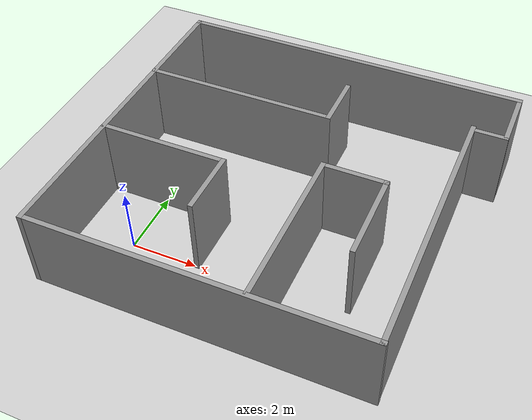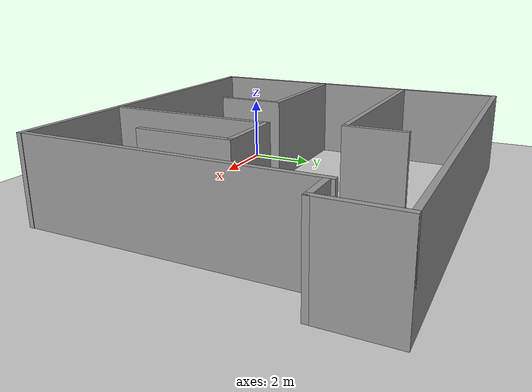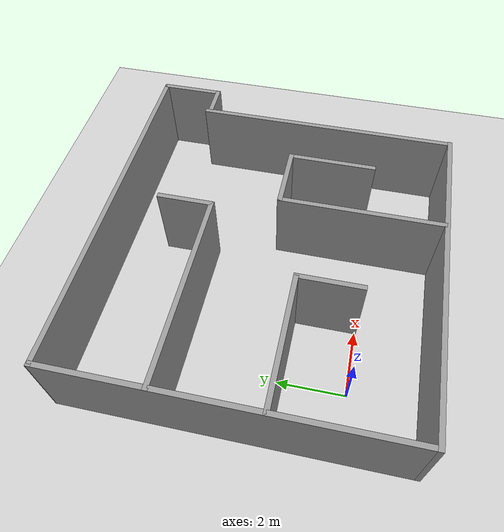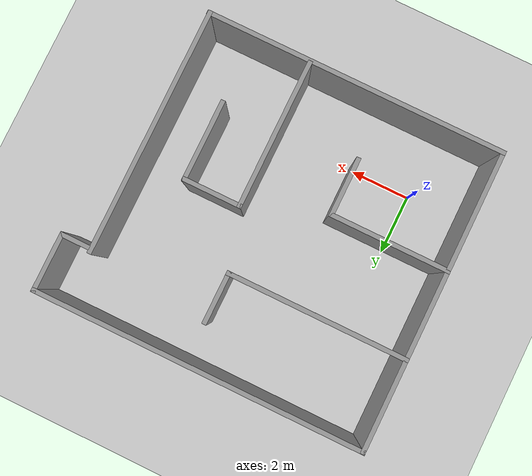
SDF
<sdf version="1.7">
 <world name="default">
  <light name="sun" type="directional">
   <pose>0 0 10 0 -0 0</pose>
   <diffuse>0.8 0.8 0.8 1</diffuse>
   <specular>0.2 0.2 0.2 1</specular>
   <attenuation>
    <range>1000</range>
    <constant>0.9</constant>
    <linear>0.01</linear>
    <quadratic>0.001</quadratic>
   </attenuation>
   <direction>-0.5 0.1 -0.9</direction>
   <spot><inner_angle>0</inner_angle><outer_angle>0</outer_angle><falloff>0</falloff></spot>
  </light>
  <model name="ground_plane">
   <static>1</static>
   <link name="link">
    <collision name="collision">
     <geometry><plane><normal>0 0 1</normal><size>100 100</size></plane></geometry>
     <surface>
      <contact><collide_bitmask>65535</collide_bitmask></contact>
      <friction><ode><mu>100</mu><mu2>50</mu2></ode></friction>
     </surface>
    </collision>
    <visual name="visual">
     <cast_shadows>0</cast_shadows>
     <geometry><plane><normal>0 0 1</normal><size>100 100</size></plane></geometry>
     <material>
      <script><uri>file://media/materials/scripts/gazebo.material</uri><name>Gazebo/Grey</name></script>
     </material>
    </visual>
   </link>
  </model>
  <gravity>0 0 -9.8</gravity>
  <magnetic_field>6e-06 2.3e-05 -4.2e-05</magnetic_field>
  <atmosphere type="adiabatic"/>
  <physics type="ode">
   <max_step_size>0.01</max_step_size>
   <real_time_factor>1</real_time_factor>
   <real_time_update_rate>0</real_time_update_rate>
  </physics>
  <scene><ambient>0.4 0.4 0.4 1</ambient><background>0.7 0.7 0.7 1</background><shadows>1</shadows></scene>
  <spherical_coordinates>
   <surface_model>EARTH_WGS84</surface_model>
   <latitude_deg>0</latitude_deg>
   <longitude_deg>0</longitude_deg>
   <elevation>0</elevation>
   <heading_deg>0</heading_deg>
  </spherical_coordinates>
  <model name="simple_maze">
   <pose>3.64718 2.85569 0 0 -0 0</pose>
   <link name="Wall_0">
    <collision name="Wall_0_Collision">
     <geometry><box><size>11 0.15 2.5</size></box></geometry>
     <pose>0 0 1.25 0 -0 0</pose>
    </collision>
    <visual name="Wall_0_Visual">
     <pose>0 0 1.25 0 -0 0</pose>
     <geometry><box><size>11 0.15 2.5</size></box></geometry>
     <material>
      <script><uri>file://media/materials/scripts/gazebo.material</uri><name>Gazebo/Grey</name></script>
      <ambient>1 1 1 1</ambient>
     </material>
     <meta><layer>0</layer></meta>
    </visual>
    <pose>0 4.9325 0 0 -0 0</pose>
   </link>
   <link name="Wall_17">
    <collision name="Wall_17_Collision">
     <geometry><box><size>2 0.15 2.5</size></box></geometry>
     <pose>0 0 1.25 0 -0 0</pose>
    </collision>
    <visual name="Wall_17_Visual">
     <pose>0 0 1.25 0 -0 0</pose>
     <geometry><box><size>2 0.15 2.5</size></box></geometry>
     <material>
      <script><uri>file://media/materials/scripts/gazebo.material</uri><name>Gazebo/Grey</name></script>
      <ambient>1 1 1 1</ambient>
     </material>
     <meta><layer>0</layer></meta>
    </visual>
    <pose>5.425 4.0075 0 0 -0 -1.5708</pose>
   </link>
   <link name="Wall_18">
    <collision name="Wall_18_Collision">
     <geometry><box><size>1 0.15 2.5</size></box></geometry>
     <pose>0 0 1.25 0 -0 0</pose>
    </collision>
    <visual name="Wall_18_Visual">
     <pose>0 0 1.25 0 -0 0</pose>
     <geometry><box><size>1 0.15 2.5</size></box></geometry>
     <material>
      <script><uri>file://media/materials/scripts/gazebo.material</uri><name>Gazebo/Grey</name></script>
      <ambient>1 1 1 1</ambient>
     </material>
     <meta><layer>0</layer></meta>
    </visual>
    <pose>5 3.0825 0 0 -0 3.14159</pose>
   </link>
   <link name="Wall_20">
    <collision name="Wall_20_Collision">
     <geometry><box><size>4 0.15 2.5</size></box></geometry>
     <pose>0 0 1.25 0 -0 0</pose>
    </collision>
    <visual name="Wall_20_Visual">
     <pose>0 0 1.25 0 -0 0</pose>
     <geometry><box><size>4 0.15 2.5</size></box></geometry>
     <material>
      <script><uri>file://media/materials/scripts/gazebo.material</uri><name>Gazebo/Grey</name></script>
      <ambient>1 1 1 1</ambient>
     </material>
     <meta><layer>0</layer></meta>
    </visual>
    <pose>-3.49922 -0.970149 0 0 -0 0</pose>
   </link>
   <link name="Wall_21">
    <collision name="Wall_21_Collision">
     <geometry><box><size>2 0.15 2.5</size></box></geometry>
     <pose>0 0 1.25 0 -0 0</pose>
    </collision>
    <visual name="Wall_21_Visual">
     <pose>0 0 1.25 0 -0 0</pose>
     <geometry><box><size>2 0.15 2.5</size></box></geometry>
     <material>
      <script><uri>file://media/materials/scripts/gazebo.material</uri><name>Gazebo/Grey</name></script>
      <ambient>1 1 1 1</ambient>
     </material>
     <meta><layer>0</layer></meta>
    </visual>
    <pose>-1.57422 -1.89515 0 0 -0 -1.5708</pose>
   </link>
   <link name="Wall_23">
    <collision name="Wall_23_Collision">
     <geometry><box><size>5 0.15 2.5</size></box></geometry>
     <pose>0 0 1.25 0 -0 0</pose>
    </collision>
    <visual name="Wall_23_Visual">
     <pose>0 0 1.25 0 -0 0</pose>
     <geometry><box><size>5 0.15 2.5</size></box></geometry>
     <material>
      <script><uri>file://media/materials/scripts/gazebo.material</uri><name>Gazebo/Grey</name></script>
      <ambient>1 1 1 1</ambient>
     </material>
     <meta><layer>0</layer></meta>
    </visual>
    <pose>1.02286 -2.43386 0 0 -0 1.5708</pose>
   </link>
   <link name="Wall_24">
    <collision name="Wall_24_Collision">
     <geometry><box><size>2 0.15 2.5</size></box></geometry>
     <pose>0 0 1.25 0 -0 0</pose>
    </collision>
    <visual name="Wall_24_Visual">
     <pose>0 0 1.25 0 -0 0</pose>
     <geometry><box><size>2 0.15 2.5</size></box></geometry>
     <material>
      <script><uri>file://media/materials/scripts/gazebo.material</uri><name>Gazebo/Grey</name></script>
      <ambient>1 1 1 1</ambient>
     </material>
     <meta><layer>0</layer></meta>
    </visual>
    <pose>1.94786 -0.008859 0 0 -0 0</pose>
   </link>
   <link name="Wall_26">
    <collision name="Wall_26_Collision">
     <geometry><box><size>1.75 0.15 2.5</size></box></geometry>
     <pose>0 0 1.25 0 -0 0</pose>
    </collision>
    <visual name="Wall_26_Visual">
     <pose>0 0 1.25 0 -0 0</pose>
     <geometry><box><size>1.75 0.15 2.5</size></box></geometry>
     <material>
      <script><uri>file://media/materials/scripts/gazebo.material</uri><name>Gazebo/Grey</name></script>
      <ambient>1 1 1 1</ambient>
     </material>
     <meta><layer>0</layer></meta>
    </visual>
    <pose>0.425905 2.74962 0 0 -0 -1.5708</pose>
   </link>
   <link name="Wall_27">
    <collision name="Wall_27_Collision">
     <geometry><box><size>6 0.15 2.5</size></box></geometry>
     <pose>0 0 1.25 0 -0 0</pose>
    </collision>
    <visual name="Wall_27_Visual">
     <pose>0 0 1.25 0 -0 0</pose>
     <geometry><box><size>6 0.15 2.5</size></box></geometry>
     <material>
      <script><uri>file://media/materials/scripts/gazebo.material</uri><name>Gazebo/Grey</name></script>
      <ambient>1 1 1 1</ambient>
     </material>
     <meta><layer>0</layer></meta>
    </visual>
    <pose>-2.4991 1.94962 0 0 -0 3.14159</pose>
   </link>
   <link name="Wall_29">
    <collision name="Wall_29_Collision">
     <geometry><box><size>2.75 0.15 2.5</size></box></geometry>
     <pose>0 0 1.25 0 -0 0</pose>
    </collision>
    <visual name="Wall_29_Visual">
     <pose>0 0 1.25 0 -0 0</pose>
     <geometry><box><size>2.75 0.15 2.5</size></box></geometry>
     <material>
      <script><uri>file://media/materials/scripts/gazebo.material</uri><name>Gazebo/Grey</name></script>
      <ambient>1 1 1 1</ambient>
     </material>
     <meta><layer>0</layer></meta>
    </visual>
    <pose>2.87286 -1.30886 0 0 -0 -1.5708</pose>
   </link>
   <link name="Wall_4">
    <collision name="Wall_4_Collision">
     <geometry><box><size>10.03 0.15 2.5</size></box></geometry>
     <pose>0 0 1.25 0 -0 0</pose>
    </collision>
    <visual name="Wall_4_Visual">
     <pose>0 0 1.25 0 -0 0</pose>
     <geometry><box><size>10.03 0.15 2.5</size></box></geometry>
     <material>
      <script><uri>file://media/materials/scripts/gazebo.material</uri><name>Gazebo/Grey</name></script>
      <ambient>1 1 1 1</ambient>
     </material>
     <meta><layer>0</layer></meta>
    </visual>
    <pose>-0.485 -4.9325 0 0 -0 3.14159</pose>
   </link>
   <link name="Wall_5">
    <collision name="Wall_5_Collision">
     <geometry><box><size>10 0.15 2.5</size></box></geometry>
     <pose>0 0 1.25 0 -0 0</pose>
    </collision>
    <visual name="Wall_5_Visual">
     <pose>0 0 1.25 0 -0 0</pose>
     <geometry><box><size>10 0.15 2.5</size></box></geometry>
     <material>
      <script><uri>file://media/materials/scripts/gazebo.material</uri><name>Gazebo/Grey</name></script>
      <ambient>1 1 1 1</ambient>
     </material>
     <meta><layer>0</layer></meta>
    </visual>
    <pose>-5.425 -0.0075 0 0 -0 1.5708</pose>
   </link>
   <link name="Wall_7">
    <collision name="Wall_7_Collision">
     <geometry><box><size>8.25 0.15 2.5</size></box></geometry>
     <pose>0 0 1.25 0 -0 0</pose>
    </collision>
    <visual name="Wall_7_Visual">
     <pose>0 0 1.25 0 -0 0</pose>
     <geometry><box><size>8.25 0.15 2.5</size></box></geometry>
     <material>
      <script><uri>file://media/materials/scripts/gazebo.material</uri><name>Gazebo/Grey</name></script>
      <ambient>1 1 1 1</ambient>
     </material>
     <meta><layer>0</layer></meta>
    </visual>
    <pose>4.44 -0.8825 0 0 -0 1.5708</pose>
   </link>
   <static>1</static>
  </model>
 </world>
</sdf>
